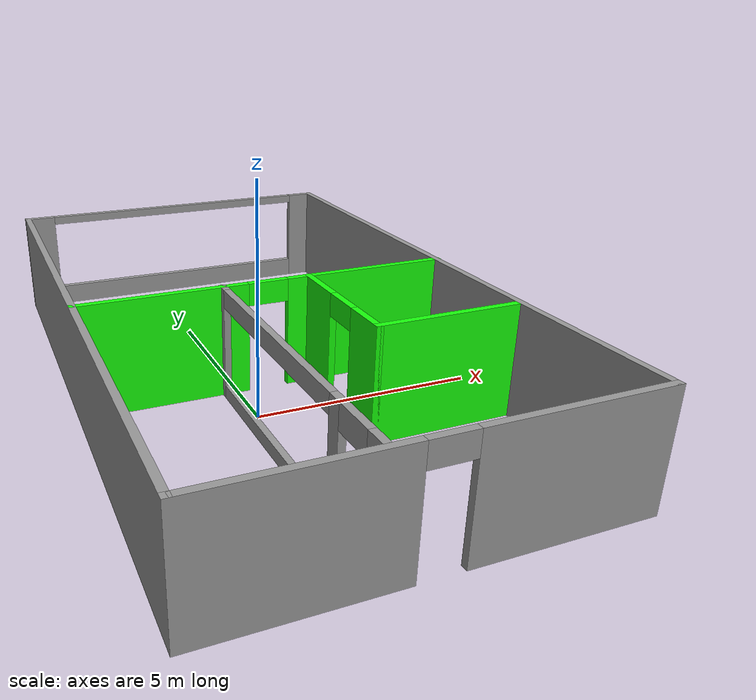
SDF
<?xml version='1.0'?>
<sdf version='1.6'>
  <model name='myoffice'>
    <pose frame=''>0.772455 1.39221 0 0 -0 0</pose>
    <link name='Wall_10'>
      <pose frame=''>0.005766 -0.083972 0 0 -0 0</pose>
      <visual name='Wall_10_Visual_0'>
        <pose frame=''>-2.36931 0 1.25 0 -0 0</pose>
        <geometry>
          <box>
            <size>3.76138 0.15 2.5</size>
          </box>
        </geometry>
        <material>
          <script>
            <uri>file://media/materials/scripts/gazebo.material</uri>
            <name>Gazebo/Grey</name>
          </script>
          <ambient>0.0901961 1 0.0431373 1</ambient>
        </material>
        <meta>
          <layer>0</layer>
        </meta>
      </visual>
      <collision name='Wall_10_Collision_0'>
        <geometry>
          <box>
            <size>3.76138 0.15 2.5</size>
          </box>
        </geometry>
        <pose frame=''>-2.36931 0 1.25 0 -0 0</pose>
      </collision>
      <visual name='Wall_10_Visual_1'>
        <pose frame=''>2.33069 0 1.25 0 -0 0</pose>
        <geometry>
          <box>
            <size>3.83862 0.15 2.5</size>
          </box>
        </geometry>
        <material>
          <script>
            <uri>file://media/materials/scripts/gazebo.material</uri>
            <name>Gazebo/Grey</name>
          </script>
          <ambient>0.0901961 1 0.0431373 1</ambient>
        </material>
        <meta>
          <layer>0</layer>
        </meta>
      </visual>
      <collision name='Wall_10_Collision_1'>
        <geometry>
          <box>
            <size>3.83862 0.15 2.5</size>
          </box>
        </geometry>
        <pose frame=''>2.33069 0 1.25 0 -0 0</pose>
      </collision>
      <visual name='Wall_10_Visual_2'>
        <pose frame=''>-0.038616 0 2.25 0 -0 0</pose>
        <geometry>
          <box>
            <size>0.9 0.15 0.5</size>
          </box>
        </geometry>
        <material>
          <script>
            <uri>file://media/materials/scripts/gazebo.material</uri>
            <name>Gazebo/Grey</name>
          </script>
          <ambient>0.0901961 1 0.0431373 1</ambient>
        </material>
        <meta>
          <layer>0</layer>
        </meta>
      </visual>
      <collision name='Wall_10_Collision_2'>
        <geometry>
          <box>
            <size>0.9 0.15 0.5</size>
          </box>
        </geometry>
        <pose frame=''>-0.038616 0 2.25 0 -0 0</pose>
      </collision>
    </link>
    <link name='Wall_13'>
      <pose frame=''>-1.03041 -3.48237 0 0 0 -1.5708</pose>
      <visual name='Wall_13_Visual_0'>
        <pose frame=''>-3.33826 0 1.25 0 -0 0</pose>
        <geometry>
          <box>
            <size>0.323473 0.15 2.5</size>
          </box>
        </geometry>
        <material>
          <script>
            <uri>file://media/materials/scripts/gazebo.material</uri>
            <name>Gazebo/Grey</name>
          </script>
          <ambient>1 1 1 1</ambient>
        </material>
        <meta>
          <layer>0</layer>
        </meta>
      </visual>
      <collision name='Wall_13_Collision_0'>
        <geometry>
          <box>
            <size>0.323473 0.15 2.5</size>
          </box>
        </geometry>
        <pose frame=''>-3.33826 0 1.25 0 -0 0</pose>
      </collision>
      <visual name='Wall_13_Visual_1'>
        <pose frame=''>3.2818 0 1.25 0 -0 0</pose>
        <geometry>
          <box>
            <size>0.436404 0.15 2.5</size>
          </box>
        </geometry>
        <material>
          <script>
            <uri>file://media/materials/scripts/gazebo.material</uri>
            <name>Gazebo/Grey</name>
          </script>
          <ambient>1 1 1 1</ambient>
        </material>
        <meta>
          <layer>0</layer>
        </meta>
      </visual>
      <collision name='Wall_13_Collision_1'>
        <geometry>
          <box>
            <size>0.436404 0.15 2.5</size>
          </box>
        </geometry>
        <pose frame=''>3.2818 0 1.25 0 -0 0</pose>
      </collision>
      <visual name='Wall_13_Visual_2'>
        <pose frame=''>-0.506465 0 0.15 0 -0 0</pose>
        <geometry>
          <box>
            <size>5.34012 0.15 0.3</size>
          </box>
        </geometry>
        <material>
          <script>
            <uri>file://media/materials/scripts/gazebo.material</uri>
            <name>Gazebo/Grey</name>
          </script>
          <ambient>1 1 1 1</ambient>
        </material>
        <meta>
          <layer>0</layer>
        </meta>
      </visual>
      <collision name='Wall_13_Collision_2'>
        <geometry>
          <box>
            <size>5.34012 0.15 0.3</size>
          </box>
        </geometry>
        <pose frame=''>-0.506465 0 0.15 0 -0 0</pose>
      </collision>
      <visual name='Wall_13_Visual_3'>
        <pose frame=''>1.99354 0 1.4 0 -0 0</pose>
        <geometry>
          <box>
            <size>0.340123 0.15 2.2</size>
          </box>
        </geometry>
        <material>
          <script>
            <uri>file://media/materials/scripts/gazebo.material</uri>
            <name>Gazebo/Grey</name>
          </script>
          <ambient>1 1 1 1</ambient>
        </material>
        <meta>
          <layer>0</layer>
        </meta>
      </visual>
      <collision name='Wall_13_Collision_3'>
        <geometry>
          <box>
            <size>0.340123 0.15 2.2</size>
          </box>
        </geometry>
        <pose frame=''>1.99354 0 1.4 0 -0 0</pose>
      </collision>
      <visual name='Wall_13_Visual_4'>
        <pose frame=''>2.6136 0 2.25 0 -0 0</pose>
        <geometry>
          <box>
            <size>0.9 0.15 0.5</size>
          </box>
        </geometry>
        <material>
          <script>
            <uri>file://media/materials/scripts/gazebo.material</uri>
            <name>Gazebo/Grey</name>
          </script>
          <ambient>1 1 1 1</ambient>
        </material>
        <meta>
          <layer>0</layer>
        </meta>
      </visual>
      <collision name='Wall_13_Collision_4'>
        <geometry>
          <box>
            <size>0.9 0.15 0.5</size>
          </box>
        </geometry>
        <pose frame=''>2.6136 0 2.25 0 -0 0</pose>
      </collision>
      <visual name='Wall_13_Visual_5'>
        <pose frame=''>-0.676527 0 2.3 0 -0 0</pose>
        <geometry>
          <box>
            <size>5 0.15 0.4</size>
          </box>
        </geometry>
        <material>
          <script>
            <uri>file://media/materials/scripts/gazebo.material</uri>
            <name>Gazebo/Grey</name>
          </script>
          <ambient>1 1 1 1</ambient>
        </material>
        <meta>
          <layer>0</layer>
        </meta>
      </visual>
      <collision name='Wall_13_Collision_5'>
        <geometry>
          <box>
            <size>5 0.15 0.4</size>
          </box>
        </geometry>
        <pose frame=''>-0.676527 0 2.3 0 -0 0</pose>
      </collision>
    </link>
    <link name='Wall_15'>
      <pose frame=''>0.942304 -1.62677 0 0 0 -1.5708</pose>
      <visual name='Wall_15_Visual_0'>
        <pose frame=''>-0.976748 0 1.25 0 -0 0</pose>
        <geometry>
          <box>
            <size>1.2965 0.15 2.5</size>
          </box>
        </geometry>
        <material>
          <script>
            <uri>file://media/materials/scripts/gazebo.material</uri>
            <name>Gazebo/Grey</name>
          </script>
          <ambient>0.0901961 1 0.0431373 1</ambient>
        </material>
        <meta>
          <layer>0</layer>
        </meta>
      </visual>
      <collision name='Wall_15_Collision_0'>
        <geometry>
          <box>
            <size>1.2965 0.15 2.5</size>
          </box>
        </geometry>
        <pose frame=''>-0.976748 0 1.25 0 -0 0</pose>
      </collision>
      <visual name='Wall_15_Visual_1'>
        <pose frame=''>1.09825 0 1.25 0 -0 0</pose>
        <geometry>
          <box>
            <size>1.0535 0.15 2.5</size>
          </box>
        </geometry>
        <material>
          <script>
            <uri>file://media/materials/scripts/gazebo.material</uri>
            <name>Gazebo/Grey</name>
          </script>
          <ambient>0.0901961 1 0.0431373 1</ambient>
        </material>
        <meta>
          <layer>0</layer>
        </meta>
      </visual>
      <collision name='Wall_15_Collision_1'>
        <geometry>
          <box>
            <size>1.0535 0.15 2.5</size>
          </box>
        </geometry>
        <pose frame=''>1.09825 0 1.25 0 -0 0</pose>
      </collision>
      <visual name='Wall_15_Visual_2'>
        <pose frame=''>0.121503 0 2.25 0 -0 0</pose>
        <geometry>
          <box>
            <size>0.9 0.15 0.5</size>
          </box>
        </geometry>
        <material>
          <script>
            <uri>file://media/materials/scripts/gazebo.material</uri>
            <name>Gazebo/Grey</name>
          </script>
          <ambient>0.0901961 1 0.0431373 1</ambient>
        </material>
        <meta>
          <layer>0</layer>
        </meta>
      </visual>
      <collision name='Wall_15_Collision_2'>
        <geometry>
          <box>
            <size>0.9 0.15 0.5</size>
          </box>
        </geometry>
        <pose frame=''>0.121503 0 2.25 0 -0 0</pose>
      </collision>
    </link>
    <link name='Wall_16'>
      <collision name='Wall_16_Collision'>
        <geometry>
          <box>
            <size>3.25 0.15 2.5</size>
          </box>
        </geometry>
        <pose frame=''>0 0 1.25 0 -0 0</pose>
      </collision>
      <visual name='Wall_16_Visual'>
        <pose frame=''>0 0 1.25 0 -0 0</pose>
        <geometry>
          <box>
            <size>3.25 0.15 2.5</size>
          </box>
        </geometry>
        <material>
          <script>
            <uri>file://media/materials/scripts/gazebo.material</uri>
            <name>Gazebo/Grey</name>
          </script>
          <ambient>0.0901961 1 0.0431373 1</ambient>
        </material>
        <meta>
          <layer>0</layer>
        </meta>
      </visual>
      <pose frame=''>2.4923 -3.17677 0 0 -0 0</pose>
    </link>
    <link name='Wall_4'>
      <pose frame=''>-0.005766 -7.05 0 0 -0 0</pose>
      <visual name='Wall_4_Visual_0'>
        <pose frame=''>-2.35692 0 1.25 0 -0 0</pose>
        <geometry>
          <box>
            <size>3.78616 0.15 2.5</size>
          </box>
        </geometry>
        <material>
          <script>
            <uri>file://media/materials/scripts/gazebo.material</uri>
            <name>Gazebo/Grey</name>
          </script>
          <ambient>1 1 1 1</ambient>
        </material>
        <meta>
          <layer>0</layer>
        </meta>
      </visual>
      <collision name='Wall_4_Collision_0'>
        <geometry>
          <box>
            <size>3.78616 0.15 2.5</size>
          </box>
        </geometry>
        <pose frame=''>-2.35692 0 1.25 0 -0 0</pose>
      </collision>
      <visual name='Wall_4_Visual_1'>
        <pose frame=''>2.34308 0 1.25 0 -0 0</pose>
        <geometry>
          <box>
            <size>3.81384 0.15 2.5</size>
          </box>
        </geometry>
        <material>
          <script>
            <uri>file://media/materials/scripts/gazebo.material</uri>
            <name>Gazebo/Grey</name>
          </script>
          <ambient>1 1 1 1</ambient>
        </material>
        <meta>
          <layer>0</layer>
        </meta>
      </visual>
      <collision name='Wall_4_Collision_1'>
        <geometry>
          <box>
            <size>3.81384 0.15 2.5</size>
          </box>
        </geometry>
        <pose frame=''>2.34308 0 1.25 0 -0 0</pose>
      </collision>
      <visual name='Wall_4_Visual_2'>
        <pose frame=''>-0.013837 0 2.25 0 -0 0</pose>
        <geometry>
          <box>
            <size>0.9 0.15 0.5</size>
          </box>
        </geometry>
        <material>
          <script>
            <uri>file://media/materials/scripts/gazebo.material</uri>
            <name>Gazebo/Grey</name>
          </script>
          <ambient>1 1 1 1</ambient>
        </material>
        <meta>
          <layer>0</layer>
        </meta>
      </visual>
      <collision name='Wall_4_Collision_2'>
        <geometry>
          <box>
            <size>0.9 0.15 0.5</size>
          </box>
        </geometry>
        <pose frame=''>-0.013837 0 2.25 0 -0 0</pose>
      </collision>
    </link>
    <link name='Wall_5'>
      <collision name='Wall_5_Collision'>
        <geometry>
          <box>
            <size>14.25 0.15 2.5</size>
          </box>
        </geometry>
        <pose frame=''>0 0 1.25 0 -0 0</pose>
      </collision>
      <visual name='Wall_5_Visual'>
        <pose frame=''>0 0 1.25 0 -0 0</pose>
        <geometry>
          <box>
            <size>14.25 0.15 2.5</size>
          </box>
        </geometry>
        <material>
          <script>
            <uri>file://media/materials/scripts/gazebo.material</uri>
            <name>Gazebo/Grey</name>
          </script>
          <ambient>1 1 1 1</ambient>
        </material>
        <meta>
          <layer>0</layer>
        </meta>
      </visual>
      <pose frame=''>4.16923 0 0 0 -0 1.5708</pose>
    </link>
    <link name='Wall_6'>
      <pose frame=''>-0.005766 7.05 0 0 -0 3.14159</pose>
      <visual name='Wall_6_Visual_0'>
        <pose frame=''>-3.88194 0 1.25 0 -0 0</pose>
        <geometry>
          <box>
            <size>0.736128 0.15 2.5</size>
          </box>
        </geometry>
        <material>
          <script>
            <uri>file://media/materials/scripts/gazebo.material</uri>
            <name>Gazebo/Grey</name>
          </script>
          <ambient>1 1 1 1</ambient>
        </material>
        <meta>
          <layer>0</layer>
        </meta>
      </visual>
      <collision name='Wall_6_Collision_0'>
        <geometry>
          <box>
            <size>0.736128 0.15 2.5</size>
          </box>
        </geometry>
        <pose frame=''>-3.88194 0 1.25 0 -0 0</pose>
      </collision>
      <visual name='Wall_6_Visual_1'>
        <pose frame=''>0.368064 0 0.25 0 -0 0</pose>
        <geometry>
          <box>
            <size>7.76387 0.15 0.5</size>
          </box>
        </geometry>
        <material>
          <script>
            <uri>file://media/materials/scripts/gazebo.material</uri>
            <name>Gazebo/Grey</name>
          </script>
          <ambient>1 1 1 1</ambient>
        </material>
        <meta>
          <layer>0</layer>
        </meta>
      </visual>
      <collision name='Wall_6_Collision_1'>
        <geometry>
          <box>
            <size>7.76387 0.15 0.5</size>
          </box>
        </geometry>
        <pose frame=''>0.368064 0 0.25 0 -0 0</pose>
      </collision>
      <visual name='Wall_6_Visual_2'>
        <pose frame=''>3.86806 0 1.5 0 -0 0</pose>
        <geometry>
          <box>
            <size>0.763872 0.15 2</size>
          </box>
        </geometry>
        <material>
          <script>
            <uri>file://media/materials/scripts/gazebo.material</uri>
            <name>Gazebo/Grey</name>
          </script>
          <ambient>1 1 1 1</ambient>
        </material>
        <meta>
          <layer>0</layer>
        </meta>
      </visual>
      <collision name='Wall_6_Collision_2'>
        <geometry>
          <box>
            <size>0.763872 0.15 2</size>
          </box>
        </geometry>
        <pose frame=''>3.86806 0 1.5 0 -0 0</pose>
      </collision>
      <visual name='Wall_6_Visual_3'>
        <pose frame=''>-0.013872 0 2.4 0 -0 0</pose>
        <geometry>
          <box>
            <size>7 0.15 0.2</size>
          </box>
        </geometry>
        <material>
          <script>
            <uri>file://media/materials/scripts/gazebo.material</uri>
            <name>Gazebo/Grey</name>
          </script>
          <ambient>1 1 1 1</ambient>
        </material>
        <meta>
          <layer>0</layer>
        </meta>
      </visual>
      <collision name='Wall_6_Collision_3'>
        <geometry>
          <box>
            <size>7 0.15 0.2</size>
          </box>
        </geometry>
        <pose frame=''>-0.013872 0 2.4 0 -0 0</pose>
      </collision>
    </link>
    <link name='Wall_7'>
      <collision name='Wall_7_Collision'>
        <geometry>
          <box>
            <size>14.25 0.15 2.5</size>
          </box>
        </geometry>
        <pose frame=''>0 0 1.25 0 -0 0</pose>
      </collision>
      <visual name='Wall_7_Visual'>
        <pose frame=''>0 0 1.25 0 -0 0</pose>
        <geometry>
          <box>
            <size>14.25 0.15 2.5</size>
          </box>
        </geometry>
        <material>
          <script>
            <uri>file://media/materials/scripts/gazebo.material</uri>
            <name>Gazebo/Grey</name>
          </script>
          <ambient>1 1 1 1</ambient>
        </material>
        <meta>
          <layer>0</layer>
        </meta>
      </visual>
      <pose frame=''>-4.18077 0 0 0 0 -1.5708</pose>
    </link>
    <static>1</static>
  </model>
</sdf>
